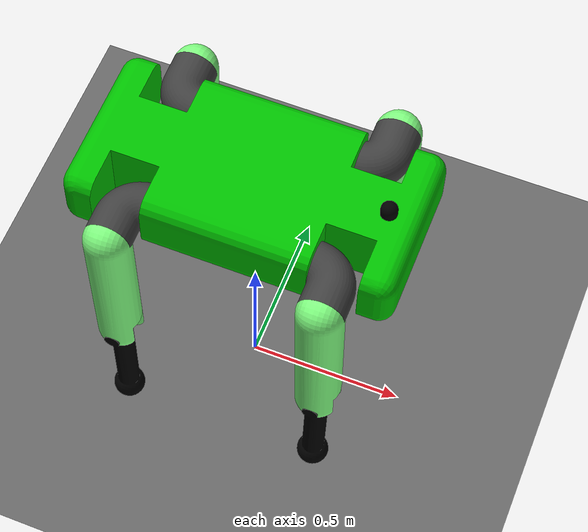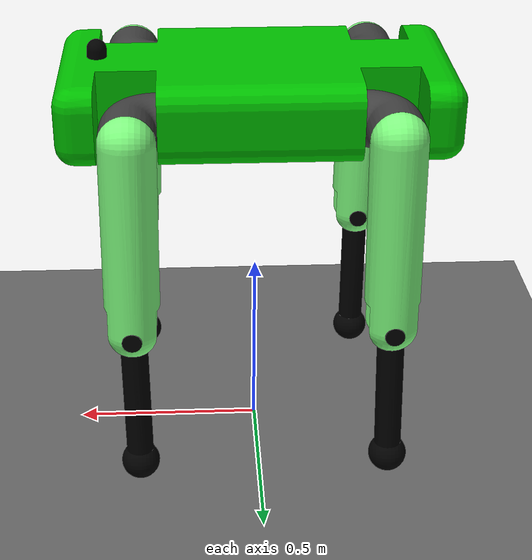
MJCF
<mujoco model="quad_robo">
  <option iterations="50" timestep="0.001" solver="PGS" gravity="0 0 -9.81" />

  <compiler angle="radian" meshdir="meshes" eulerseq="zyx" autolimits="true" />

  <default>
    <joint limited="true" damping="0.01" armature="0.01" frictionloss="0.01" />
    <geom condim="4" contype="1" conaffinity="15" friction="0.9 0.2 0.2" solref="0.001 2" />
    <motor ctrllimited="true" />
    <equality solref="0.001 2" />
    <default class="visualgeom">
      <geom material="visualgeom" condim="1" contype="0" conaffinity="0" />
    </default>
  </default>

  <asset>
    <mesh name="body" file="body.STL" />
    <mesh name="camera" file="camera.STL" />
    <mesh name="back_right_thigh" file="back_right_thigh.STL" />
    <mesh name="back_right_leg" file="back_right_leg.STL" />
    <mesh name="back_right_shin" file="back_right_shin.STL" />
    <mesh name="back_left_thigh" file="back_left_thigh.STL" />
    <mesh name="back_left_leg" file="back_left_leg.STL" />
    <mesh name="back_left_shin" file="back_left_shin.STL" />
    <mesh name="front_left_thigh" file="front_left_thigh.STL" />
    <mesh name="front_left_leg" file="front_left_leg.STL" />
    <mesh name="front_left_shin" file="front_left_shin.STL" />
    <mesh name="front_right_thigh" file="front_right_thigh.STL" />
    <mesh name="front_right_leg" file="front_right_leg.STL" />
    <mesh name="front_right_shin" file="front_right_shin.STL" />
    <texture name="texplane" type="2d" builtin="checker" rgb1=".0 .0 .0" rgb2=".8 .8 .8" width="100" height="100" />
    <material name="matplane" reflectance="0." texture="texplane" texrepeat="1 1" texuniform="true" />
    <material name="visualgeom" rgba="0.5 0.9 0.2 1" />
  </asset>

  <worldbody>
    <light directional="true" diffuse="0.4 0.4 0.4" specular="0.1 0.1 0.1" pos="0 0 5.0" dir="0 0 -1" castshadow="false" />
    <light directional="true" diffuse="0.6 0.6 0.6" specular="0.2 0.2 0.2" pos="0 0 4" dir="0 0 -1" />
    <geom name="ground" type="plane" pos="0 0 0" size="100 100 0.001" quat="1 0 0 0" material="matplane" condim="3" conaffinity="15" />
    <camera name="fixed" pos="0 -3.0 0.5" xyaxes="1 0 0 0 0 1" />
    <camera name="track" mode="trackcom" pos="0 -3.0 0.5" xyaxes="1 0 0 0 0 1" />
    <body name="root" pos="0 0 1.0" quat="1 0 0 0">
      <freejoint name="root" />
      <site name="imu" size="0.01" pos="0 0 0" />
      <geom type="mesh" rgba="0 0.752941 0 1" mesh="body" contype="1" conaffinity="0" density="0" group="1" class="visualgeom" />
      <geom type="mesh" rgba="0 0.752941 0 1" mesh="body" />
      <geom pos="0.4 -0.005 0.095" quat="0.707107 0.707107 0 0" type="mesh" rgba="0 0 0 1" mesh="camera" contype="1" conaffinity="0" density="0" group="1" class="visualgeom" />
      <geom type="mesh" rgba="0 0 0 1" mesh="camera" pos="0.4 -0.005 0.095" quat="0.707107 0.707107 0 0" />
      <body name="back_right_thigh" pos="-0.24995 -0.18 0" quat="0 0 -0.709831 0.704372">
        <inertial pos="0.0629098 0 0.0554258" quat="0.993254 0 0.115957 0" mass="2.7702" diaginertia="0.0125596 0.0121647 0.00639203" />
        <joint name="back_right_thigh_joint" pos="0 0 0" axis="1 0 0" range="-3.14 3.14" actuatorfrcrange="-1000 1000" />
        <geom type="mesh" rgba="0.25098 0.25098 0.25098 1" mesh="back_right_thigh" contype="1" conaffinity="0" density="0" group="1" class="visualgeom" />
        <geom type="mesh" rgba="0.25098 0.25098 0.25098 1" mesh="back_right_thigh" />
        <body name="back_right_leg" pos="0.07005 0 0.070008" quat="-0.00392279 0.707097 0.00392277 0.707095">
          <inertial pos="0.0730353 -0.237418 6.51884e-09" quat="0.509262 0.490495 -0.509328 0.490563" mass="6.93817" diaginertia="0.145238 0.144942 0.0172124" />
          <joint name="back_right_leg_joint" pos="0 0 0" axis="1 0 0" range="-3.14 3.14" actuatorfrcrange="-1000 1000" />
          <geom type="mesh" rgba="0.501961 1 0.501961 1" mesh="back_right_leg" contype="1" conaffinity="0" density="0" group="1" class="visualgeom" />
          <geom type="mesh" rgba="0.501961 1 0.501961 1" mesh="back_right_leg" />
          <body name="back_right_shin" pos="0 -0.5 0" quat="0.00459773 0.999989 0 0">
            <inertial pos="0.0699917 0.206759 -2.45496e-07" quat="0.499992 0.499992 -0.500008 0.500008" mass="2.18909" diaginertia="0.0499442 0.0495545 0.00191161" />
            <joint name="back_right_shin_joint" pos="0 0 0" axis="1 0 0" range="-3.14 3.14" actuatorfrcrange="-1000 1000" />
            <geom type="mesh" rgba="0 0 0 1" mesh="back_right_shin" contype="1" conaffinity="0" density="0" group="1" class="visualgeom" />
            <geom type="mesh" rgba="0 0 0 1" mesh="back_right_shin" />
          </body>
        </body>
      </body>
      <body name="back_left_thigh" pos="-0.24995 0.18 0" quat="-2.62832e-06 -2.566e-06 0.698572 0.71554">
        <inertial pos="0.0629098 0 0.0554258" quat="0.993254 0 0.115957 0" mass="2.7702" diaginertia="0.0125596 0.0121647 0.00639203" />
        <joint name="back_left_thigh_joint" pos="0 0 0" axis="-1 0 0" range="-3.14 3.14" actuatorfrcrange="-1000 1000" />
        <geom type="mesh" rgba="0.25098 0.25098 0.25098 1" mesh="back_left_thigh" contype="1" conaffinity="0" density="0" group="1" class="visualgeom" />
        <geom type="mesh" rgba="0.25098 0.25098 0.25098 1" mesh="back_left_thigh" />
        <body name="back_left_leg" pos="0.07005 0 0.0700804" quat="0.707086 0.00546207 -0.707086 0.00546206">
          <inertial pos="0.0729632 -0.237418 -5.14056e-09" quat="0.509261 0.490494 -0.509329 0.490564" mass="6.93817" diaginertia="0.145238 0.144942 0.0172124" />
          <joint name="back_left_leg_joint" pos="0 0 0" axis="-1 0 0" range="-3.14 3.14" actuatorfrcrange="-1000 1000" />
          <geom type="mesh" rgba="0.501961 1 0.501961 1" mesh="back_left_leg" contype="1" conaffinity="0" density="0" group="1" class="visualgeom" />
          <geom type="mesh" rgba="0.501961 1 0.501961 1" mesh="back_left_leg" />
          <body name="back_left_shin" pos="0 -0.5 0" quat="0.00510775 -0.999987 0 0">
            <inertial pos="0.0699198 0.206759 2.62203e-07" quat="0.5 0.5 -0.5 0.5" mass="2.1891" diaginertia="0.0499443 0.0495545 0.00191162" />
            <joint name="back_left_shin_joint" pos="0 0 0" axis="-1 0 0" range="-3.14 3.14" actuatorfrcrange="-1000 1000" />
            <geom type="mesh" rgba="0 0 0 1" mesh="back_left_shin" contype="1" conaffinity="0" density="0" group="1" class="visualgeom" />
            <geom type="mesh" rgba="0 0 0 1" mesh="back_left_shin" />
          </body>
        </body>
      </body>
      <body name="front_left_thigh" pos="0.24995 0.18 0" quat="0.717563 -0.696494 0 0">
        <inertial pos="0.0629098 0 0.0554258" quat="0.993254 0 0.115957 0" mass="2.7702" diaginertia="0.0125596 0.0121647 0.00639203" />
        <joint name="front_left_thigh_joint" pos="0 0 0" axis="1 0 0" range="-3.14 3.14" actuatorfrcrange="-1000 1000" />
        <geom type="mesh" rgba="0.25098 0.25098 0.25098 1" mesh="front_left_thigh" contype="1" conaffinity="0" density="0" group="1" class="visualgeom" />
        <geom type="mesh" rgba="0.25098 0.25098 0.25098 1" mesh="front_left_thigh" />
        <body name="front_left_leg" pos="0.07005 0 0.0701239" quat="-0.00317285 -0.7071 0.00317286 -0.7071">
          <inertial pos="0.0729198 -0.237418 3.33459e-09" quat="0.509262 0.490495 -0.509328 0.490564" mass="6.93817" diaginertia="0.145238 0.144942 0.0172124" />
          <joint name="front_left_leg_joint" pos="0 0 0" axis="-1 0 0" range="-3.14 3.14" actuatorfrcrange="-1000 1000" />
          <geom type="mesh" rgba="0.501961 1 0.501961 1" mesh="front_left_leg" contype="1" conaffinity="0" density="0" group="1" class="visualgeom" />
          <geom type="mesh" rgba="0.501961 1 0.501961 1" mesh="front_left_leg" />
          <body name="front_left_shin" pos="0 -0.5 0" quat="0.0117301 -0.999931 0 0">
            <inertial pos="0.0698764 0.206759 1.34054e-07" quat="0.5 0.5 -0.5 0.5" mass="2.18909" diaginertia="0.0499442 0.0495545 0.00191161" />
            <joint name="front_left_shin_joint" pos="0 0 0" axis="-1 0 0" range="-3.14 3.14" actuatorfrcrange="-1000 1000" />
            <geom type="mesh" rgba="0 0 0 1" mesh="front_left_shin" contype="1" conaffinity="0" density="0" group="1" class="visualgeom" />
            <geom type="mesh" rgba="0 0 0 1" mesh="front_left_shin" />
          </body>
        </body>
      </body>
      <body name="front_right_thigh" pos="0.24995 -0.18 0" quat="0.705082 0.709126 0 0">
        <inertial pos="0.0629098 0 0.0554258" quat="0.993254 0 0.115957 0" mass="2.7702" diaginertia="0.0125596 0.0121647 0.00639203" />
        <joint name="front_right_thigh_joint" pos="0 0 0" axis="-1 0 0" range="-3.14 3.14" actuatorfrcrange="-1000 1000" />
        <geom type="mesh" rgba="0.25098 0.25098 0.25098 1" mesh="front_right_thigh" contype="1" conaffinity="0" density="0" group="1" class="visualgeom" />
        <geom type="mesh" rgba="0.25098 0.25098 0.25098 1" mesh="front_right_thigh" />
        <body name="front_right_leg" pos="0.07005 0 0.0700046" quat="0.707082 0.00589294 -0.707082 0.00589293">
          <inertial pos="0.073039 -0.237418 -3.69308e-09" quat="0.509261 0.490494 -0.509328 0.490564" mass="6.93817" diaginertia="0.145238 0.144942 0.0172124" />
          <joint name="front_right_leg_joint" pos="0 0 0" axis="1 0 0" range="-3.14 3.14" actuatorfrcrange="-1000 1000" />
          <geom type="mesh" rgba="0.501961 1 0.501961 1" mesh="front_right_leg" contype="1" conaffinity="0" density="0" group="1" class="visualgeom" />
          <geom type="mesh" rgba="0.501961 1 0.501961 1" mesh="front_right_leg" />
          <body name="front_right_shin" pos="0 -0.5 0" quat="0.0155385 0.999879 0 0">
            <inertial pos="0.0699954 0.206759 -1.74081e-07" quat="0.499992 0.499992 -0.500008 0.500008" mass="2.18909" diaginertia="0.0499442 0.0495545 0.00191161" />
            <joint name="front_right_shin_joint" pos="0 0 0" axis="1 0 0" range="-3.14 3.14" actuatorfrcrange="-1000 1000" />
            <geom type="mesh" rgba="0 0 0 1" mesh="front_right_shin" contype="1" conaffinity="0" density="0" group="1" class="visualgeom" />
            <geom type="mesh" rgba="0 0 0 1" mesh="front_right_shin" />
          </body>
        </body>
      </body>
    </body>
  </worldbody>

  <actuator>
    <motor name="back_right_thigh_joint" joint="back_right_thigh_joint" ctrllimited="true" ctrlrange="-1000 1000" gear="1" />
    <motor name="back_right_leg_joint" joint="back_right_leg_joint" ctrllimited="true" ctrlrange="-1000 1000" gear="1" />
    <motor name="back_right_shin_joint" joint="back_right_shin_joint" ctrllimited="true" ctrlrange="-1000 1000" gear="1" />
    <motor name="back_left_thigh_joint" joint="back_left_thigh_joint" ctrllimited="true" ctrlrange="-1000 1000" gear="1" />
    <motor name="back_left_leg_joint" joint="back_left_leg_joint" ctrllimited="true" ctrlrange="-1000 1000" gear="1" />
    <motor name="back_left_shin_joint" joint="back_left_shin_joint" ctrllimited="true" ctrlrange="-1000 1000" gear="1" />
    <motor name="front_left_thigh_joint" joint="front_left_thigh_joint" ctrllimited="true" ctrlrange="-1000 1000" gear="1" />
    <motor name="front_left_leg_joint" joint="front_left_leg_joint" ctrllimited="true" ctrlrange="-1000 1000" gear="1" />
    <motor name="front_left_shin_joint" joint="front_left_shin_joint" ctrllimited="true" ctrlrange="-1000 1000" gear="1" />
    <motor name="front_right_thigh_joint" joint="front_right_thigh_joint" ctrllimited="true" ctrlrange="-1000 1000" gear="1" />
    <motor name="front_right_leg_joint" joint="front_right_leg_joint" ctrllimited="true" ctrlrange="-1000 1000" gear="1" />
    <motor name="front_right_shin_joint" joint="front_right_shin_joint" ctrllimited="true" ctrlrange="-1000 1000" gear="1" />
  </actuator>

  <sensor>
    <actuatorpos name="back_right_thigh_joint_p" actuator="back_right_thigh_joint" />
    <actuatorvel name="back_right_thigh_joint_v" actuator="back_right_thigh_joint" />
    <actuatorfrc name="back_right_thigh_joint_f" actuator="back_right_thigh_joint" noise="0.001" />
    <actuatorpos name="back_right_leg_joint_p" actuator="back_right_leg_joint" />
    <actuatorvel name="back_right_leg_joint_v" actuator="back_right_leg_joint" />
    <actuatorfrc name="back_right_leg_joint_f" actuator="back_right_leg_joint" noise="0.001" />
    <actuatorpos name="back_right_shin_joint_p" actuator="back_right_shin_joint" />
    <actuatorvel name="back_right_shin_joint_v" actuator="back_right_shin_joint" />
    <actuatorfrc name="back_right_shin_joint_f" actuator="back_right_shin_joint" noise="0.001" />
    <actuatorpos name="back_left_thigh_joint_p" actuator="back_left_thigh_joint" />
    <actuatorvel name="back_left_thigh_joint_v" actuator="back_left_thigh_joint" />
    <actuatorfrc name="back_left_thigh_joint_f" actuator="back_left_thigh_joint" noise="0.001" />
    <actuatorpos name="back_left_leg_joint_p" actuator="back_left_leg_joint" />
    <actuatorvel name="back_left_leg_joint_v" actuator="back_left_leg_joint" />
    <actuatorfrc name="back_left_leg_joint_f" actuator="back_left_leg_joint" noise="0.001" />
    <actuatorpos name="back_left_shin_joint_p" actuator="back_left_shin_joint" />
    <actuatorvel name="back_left_shin_joint_v" actuator="back_left_shin_joint" />
    <actuatorfrc name="back_left_shin_joint_f" actuator="back_left_shin_joint" noise="0.001" />
    <actuatorpos name="front_left_thigh_joint_p" actuator="front_left_thigh_joint" />
    <actuatorvel name="front_left_thigh_joint_v" actuator="front_left_thigh_joint" />
    <actuatorfrc name="front_left_thigh_joint_f" actuator="front_left_thigh_joint" noise="0.001" />
    <actuatorpos name="front_left_leg_joint_p" actuator="front_left_leg_joint" />
    <actuatorvel name="front_left_leg_joint_v" actuator="front_left_leg_joint" />
    <actuatorfrc name="front_left_leg_joint_f" actuator="front_left_leg_joint" noise="0.001" />
    <actuatorpos name="front_left_shin_joint_p" actuator="front_left_shin_joint" />
    <actuatorvel name="front_left_shin_joint_v" actuator="front_left_shin_joint" />
    <actuatorfrc name="front_left_shin_joint_f" actuator="front_left_shin_joint" noise="0.001" />
    <actuatorpos name="front_right_thigh_joint_p" actuator="front_right_thigh_joint" />
    <actuatorvel name="front_right_thigh_joint_v" actuator="front_right_thigh_joint" />
    <actuatorfrc name="front_right_thigh_joint_f" actuator="front_right_thigh_joint" noise="0.001" />
    <actuatorpos name="front_right_leg_joint_p" actuator="front_right_leg_joint" />
    <actuatorvel name="front_right_leg_joint_v" actuator="front_right_leg_joint" />
    <actuatorfrc name="front_right_leg_joint_f" actuator="front_right_leg_joint" noise="0.001" />
    <actuatorpos name="front_right_shin_joint_p" actuator="front_right_shin_joint" />
    <actuatorvel name="front_right_shin_joint_v" actuator="front_right_shin_joint" />
    <actuatorfrc name="front_right_shin_joint_f" actuator="front_right_shin_joint" noise="0.001" />
    <framequat name="orientation" objtype="site" noise="0.001" objname="imu" />
    <gyro name="angular-velocity" site="imu" noise="0.005" cutoff="34.9" />
  </sensor>
</mujoco>
